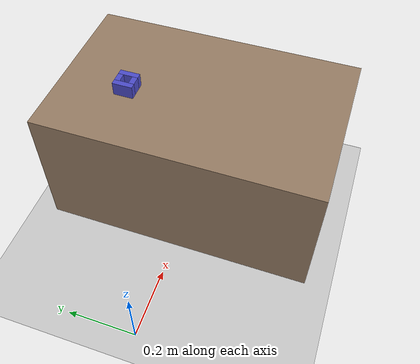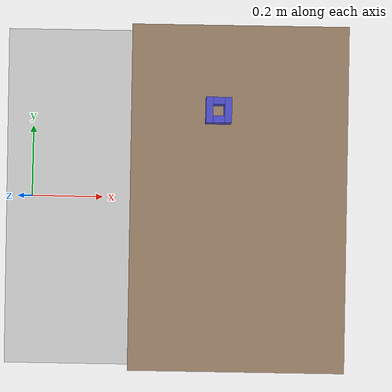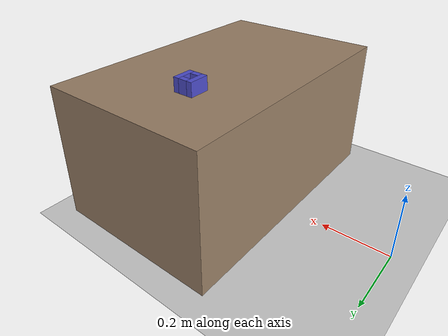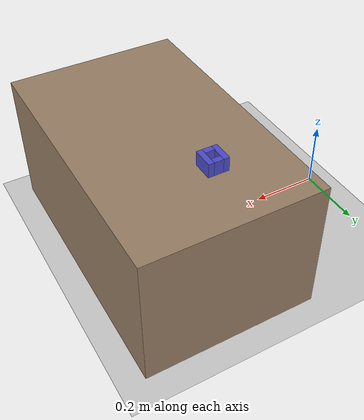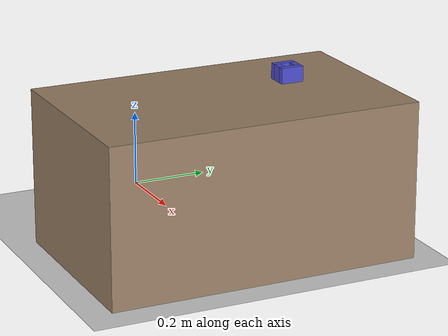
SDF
<?xml version="1.0" ?>
<sdf version="1.6">
  <world name="ur5e_experiment">
    <plugin name="gazebo_ros_state" filename="libgazebo_ros_state.so">
      <ros><namespace>/gazebo</namespace></ros>
      <update_rate>100</update_rate>
    </plugin>

    <include><uri>model://sun</uri></include>
    <include><uri>model://ground_plane</uri></include>
    <physics type="ode">
      <max_step_size>0.002</max_step_size>
      <real_time_update_rate>500</real_time_update_rate>
    <ode><solver><type>quick</type><iters>150</iters></solver></ode></physics>

    <model name="table">
      <static>true</static>
      <pose>0.55 0 0.2 0 0 0</pose>
      <link name="link">
        <collision name="c"><geometry><box><size>0.5 0.8 0.4</size></box></geometry></collision>
        <visual name="v"><geometry><box><size>0.5 0.8 0.4</size></box></geometry>
          <material><ambient>0.6 0.5 0.4 1</ambient></material></visual>
      </link>
    </model>

    <model name="fixture">
      <pose>0.5 0.2 0.42 0 0 0</pose>
      <link name="link">
        <gravity>false</gravity><kinematic>true</kinematic>
        <inertial><mass>1</mass><inertia><ixx>0.01</ixx><iyy>0.01</iyy><izz>0.01</izz><ixy>0</ixy><ixz>0</ixz><iyz>0</iyz></inertia></inertial>
        <collision name="wall_px"><pose>0.020999999999999998 0 0 0 0 0</pose><geometry><box><size>0.016 0.057999999999999996 0.04</size></box></geometry><surface><friction><ode><mu>0.5</mu><mu2>0.5</mu2></ode></friction><contact><ode><kp>1e6</kp><kd>1</kd><min_depth>0</min_depth></ode></contact></surface></collision><visual name="wall_px_v"><pose>0.020999999999999998 0 0 0 0 0</pose><geometry><box><size>0.016 0.057999999999999996 0.04</size></box></geometry><material><ambient>0.3 0.3 0.8 1</ambient></material></visual>
        <collision name="wall_nx"><pose>-0.020999999999999998 0 0 0 0 0</pose><geometry><box><size>0.016 0.057999999999999996 0.04</size></box></geometry><surface><friction><ode><mu>0.5</mu><mu2>0.5</mu2></ode></friction><contact><ode><kp>1e6</kp><kd>1</kd><min_depth>0</min_depth></ode></contact></surface></collision><visual name="wall_nx_v"><pose>-0.020999999999999998 0 0 0 0 0</pose><geometry><box><size>0.016 0.057999999999999996 0.04</size></box></geometry><material><ambient>0.3 0.3 0.8 1</ambient></material></visual>
        <collision name="wall_py"><pose>0 0.020999999999999998 0 0 0 0</pose><geometry><box><size>0.026 0.016 0.04</size></box></geometry><surface><friction><ode><mu>0.5</mu><mu2>0.5</mu2></ode></friction><contact><ode><kp>1e6</kp><kd>1</kd><min_depth>0</min_depth></ode></contact></surface></collision><visual name="wall_py_v"><pose>0 0.020999999999999998 0 0 0 0</pose><geometry><box><size>0.026 0.016 0.04</size></box></geometry><material><ambient>0.3 0.3 0.8 1</ambient></material></visual>
        <collision name="wall_ny"><pose>0 -0.020999999999999998 0 0 0 0</pose><geometry><box><size>0.026 0.016 0.04</size></box></geometry><surface><friction><ode><mu>0.5</mu><mu2>0.5</mu2></ode></friction><contact><ode><kp>1e6</kp><kd>1</kd><min_depth>0</min_depth></ode></contact></surface></collision><visual name="wall_ny_v"><pose>0 -0.020999999999999998 0 0 0 0</pose><geometry><box><size>0.026 0.016 0.04</size></box></geometry><material><ambient>0.3 0.3 0.8 1</ambient></material></visual>
      </link>
    </model>
  </world>
</sdf>
